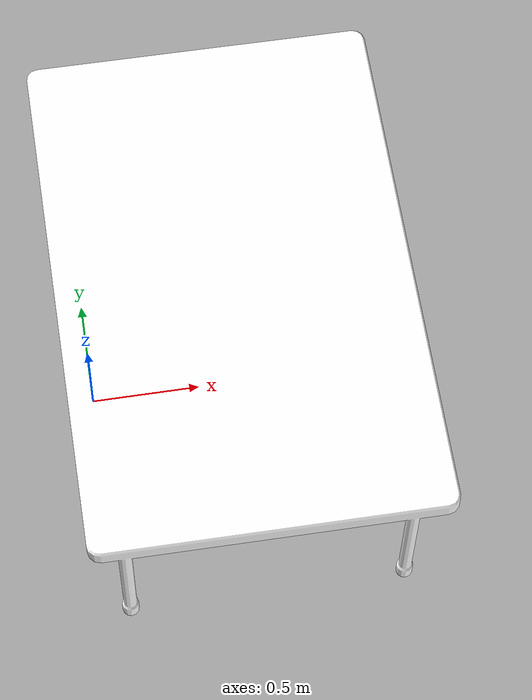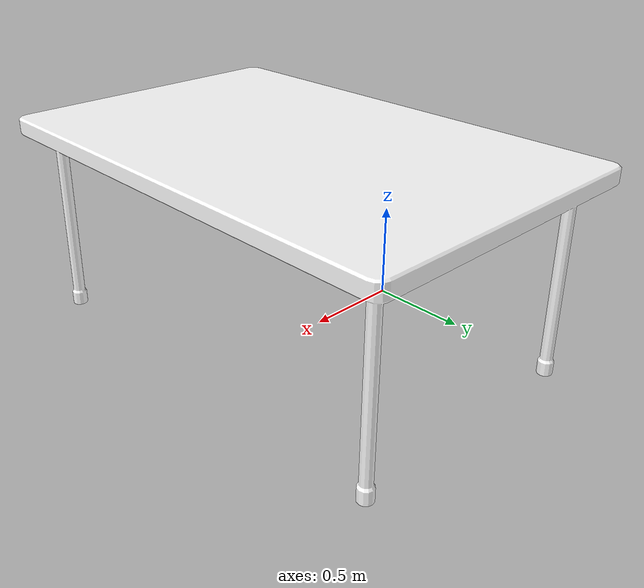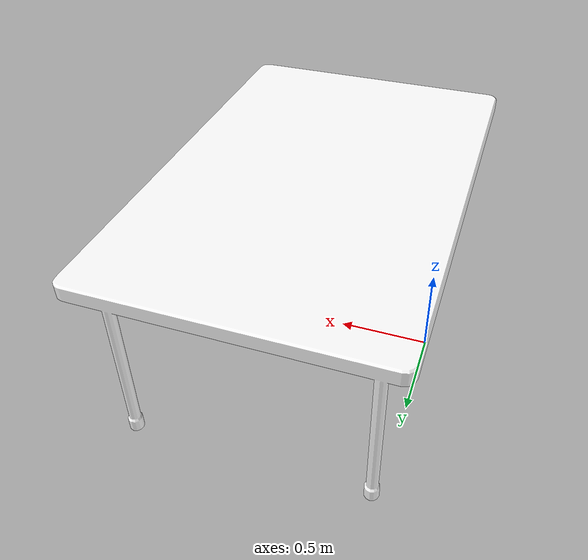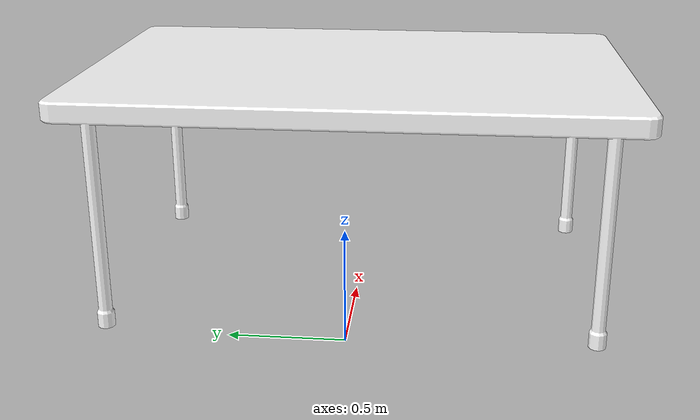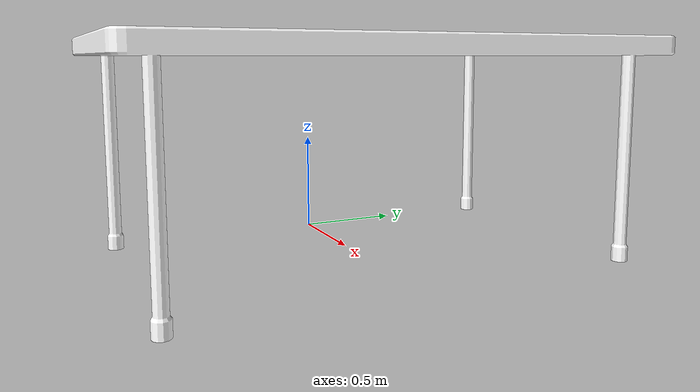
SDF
<?xml version="1.0"?>
<sdf version="1.8">
    <model name="Reflective table">
        <static>true</static>
        <link name="link">
            <pose>0 0 0 0 3.14 0</pose>
            <collision name="collision">
                <geometry>
                    <mesh>
                        <scale>0.6 0.6 0.6</scale>
                        <uri>meshes/Table.dae</uri>
                    </mesh>
                </geometry>
            </collision>
            <visual name="visual">
                <geometry>
                    <mesh>
                        <scale>0.6 0.6 0.6</scale>
                        <uri>meshes/Table.dae</uri>
                    </mesh>
                </geometry>
                <material>
                    <diffuse>1.0 1.0 1.0</diffuse>
                    <specular>1.0 1.0 1.0</specular>
                    <pbr>
                        <metal>
                            <albedo_map>materials/textures/Table_Table_BaseColor.png</albedo_map>
                            <normal_map>materials/textures/Table_Table_Normal.png</normal_map>
                            <roughness_map>materials/textures/Table_Roughness.png</roughness_map>
                            <environment_map>materials/textures/DepotEnvMap.dds</environment_map>
                            <metalness>0.1</metalness>
                        </metal>
                    </pbr>
                </material>
            </visual>
        </link>
    </model>
</sdf>
